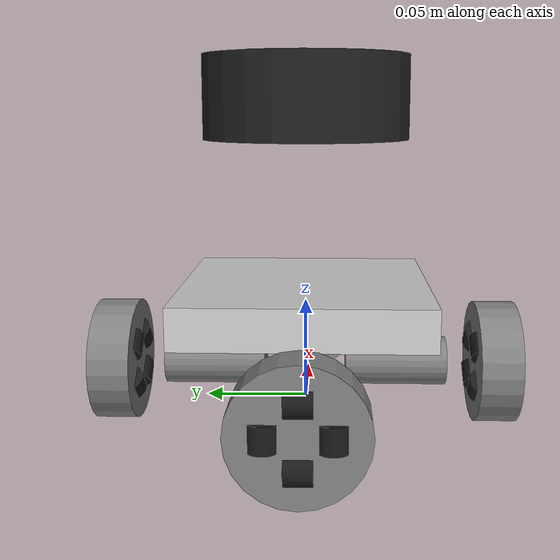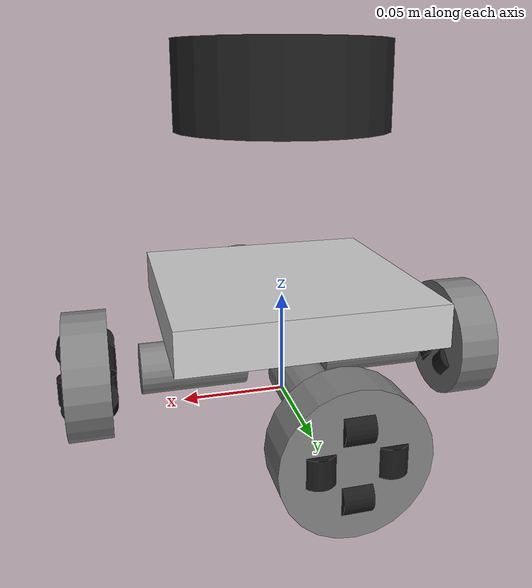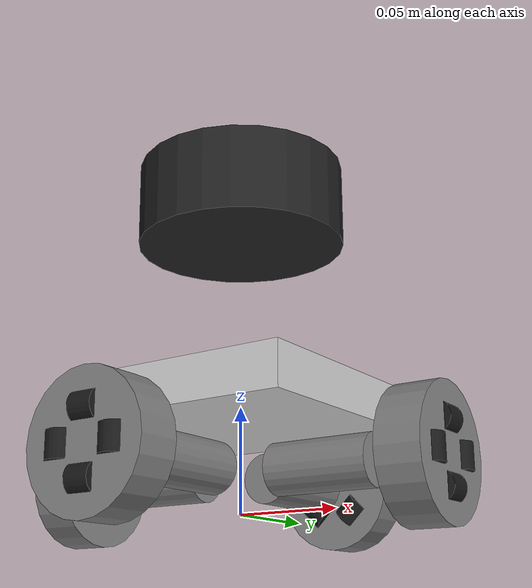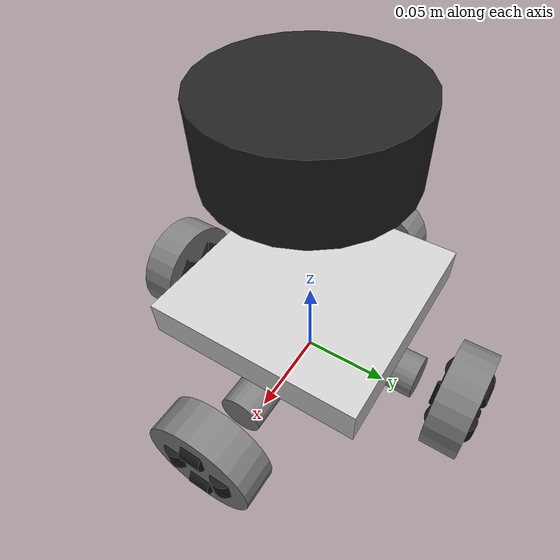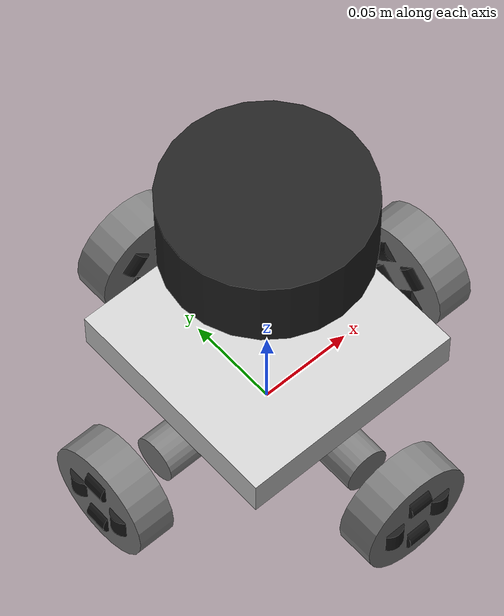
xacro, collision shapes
<?xml version="1.0"?>
<robot xmlns:xacro="http://ros.org/wiki/xacro" name="my_omni_robot">
  <material name="gray">
    <color rgba="0.8 0.8 0.8 1.0"/>
  </material>
  <material name="black">
    <color rgba="0 0 0 1.0"/>
  </material>
  <material name="white">
    <color rgba="1.0 1.0 1.0 1.0"/>
  </material>
  <material name="red">
    <color rgba="1.0 0 0 1.0"/>
  </material>
  <material name="light_red">
    <color rgba="1.0 0.5 0.5 1.0"/>
  </material>
  <material name="yellow">
    <color rgba="0 1.0 1.0 1.0"/>
  </material>

  <xacro:include filename="$(find summer_robot_description)/xacro/omni_wheel.xacro" />

  <link name="base_footprint"/>

  <joint name="footprint_base_joint" type="fixed">
    <parent link="base_footprint"/>
    <child  link="base_link"/>
    <origin xyz="0 0 0" rpy="0 0 0"/>
  </joint>

  <link name="base_link"/>

  <joint name="laser_joint" type="fixed">
    <parent link="base_link"/>
    <child link="laser"/>
    <origin xyz="0.0 0.0 0.15" rpy="0 0 0"/>
  </joint>

  <link name="laser">
    <visual>
      <origin xyz="0 0 0" rpy="0 0 0"/>
      <geometry>
        <cylinder length="0.04" radius="0.05"/>
      </geometry>
      <material name="laser_material">
        <color rgba="0.13 0.13 0.13 1.0"/>
      </material>
    </visual>
    <collision>
      <origin xyz="0 0 0" rpy="0 0 0"/>
      <geometry>
        <cylinder length="0.04" radius="0.05"/>
      </geometry>
    </collision>
    <inertial>
      <origin xyz="0 0 0" rpy="0 0 0"/>
      <mass value="0.1"/>
      <inertia ixx="0.0001" ixy="0" ixz="0" iyy="0.0001" iyz="0" izz="0.0001"/>
    </inertial>
  </link>

 <gazebo reference="laser">
  <visual>
    <material>
      <ambient>0.13 0.13 0.13 1.0</ambient>
      <diffuse>0.13 0.13 0.13 1.0</diffuse>
    </material>
  </visual>

  <sensor name="laser" type="gpu_lidar">
    <pose>0 0 0 0 0 0</pose>
    <always_on>true</always_on>
    <visualize>true</visualize>
    <update_rate>30</update_rate>
    <topic>/scan</topic>

    <lidar>
      <scan>
        <horizontal>
          <samples>720</samples>
          <resolution>1</resolution>
          <min_angle>-3.14159</min_angle>
          <max_angle>3.14159</max_angle>
        </horizontal>
      </scan>
      <range>
        <min>0.05</min>
        <max>10.0</max>
        <resolution>0.01</resolution>
      </range>
      <noise>
        <type>gaussian</type>
        <mean>0.0</mean>
        <stddev>0.01</stddev>
      </noise>
    </lidar>
  </sensor>

  <sensor name="imu_sensor" type="imu">
    <always_on>1</always_on>
    <update_rate>1</update_rate>
    <visualize>true</visualize>
    <topic>imu</topic>
  </sensor>
</gazebo>

  <joint name="body_joint" type="fixed">
    <parent link="base_link"/>
    <child  link="body_link"/>
    <origin xyz="0 0 0.05" rpy="0 0 0"/>
  </joint>

  <link name="body_link">
    <visual>
      <geometry>
        <box size="0.12 0.12 0.02" />
      </geometry>
      <material name="gray"/>
    </visual>
    <collision>
      <geometry>
        <box size="0.12 0.12 0.02" />
      </geometry>
      <surface>
        <contact>
          <collide_bitmask>0x01</collide_bitmask>
        </contact>
      </surface>
    </collision>
    <inertial>
      <mass value="2.0"/>
      <inertia ixx="0.01" ixy="0" ixz="0" iyy="0.01" iyz="0" izz="0.01"/>
    </inertial>
  </link>
  <gazebo reference="body_link">
    <visual>
      <material>
        <ambient>0.8 0.8 0.8 1.0</ambient>
        <diffuse>0.8 0.8 0.8 1.0</diffuse>
      </material>
    </visual>
  </gazebo>

  <joint name="wheel0_attach_joint" type="fixed">
    <parent link="base_link"/>
    <child  link="wheel0_attach_link"/>
    <origin xyz="${0.07*cos(0)} ${0.07*sin(0)} 0.019" rpy="0 0 ${0}"/>
  </joint>
  <link name="wheel0_attach_link" />
  <xacro:omni_wheel_set prefix="wheel0" parent="wheel0_attach_link" />

  <joint name="wheel1_attach_joint" type="fixed">
    <parent link="base_link"/>
    <child  link="wheel1_attach_link"/>
    <origin xyz="${0.07*cos(pi/2)} ${0.07*sin(pi/2)} 0.019" rpy="0 0 ${pi/2}"/>
  </joint>
  <link name="wheel1_attach_link" />
  <xacro:omni_wheel_set prefix="wheel1" parent="wheel1_attach_link" />

  <joint name="wheel2_attach_joint" type="fixed">
    <parent link="base_link"/>
    <child  link="wheel2_attach_link"/>
    <origin xyz="${0.07*cos(pi)} ${0.07*sin(pi)} 0.019" rpy="0 0 ${pi}"/>
  </joint>
  <link name="wheel2_attach_link" />
  <xacro:omni_wheel_set prefix="wheel2" parent="wheel2_attach_link" />

  <joint name="wheel3_attach_joint" type="fixed">
    <parent link="base_link"/>
    <child  link="wheel3_attach_link"/>
    <origin xyz="${0.07*cos(3*pi/2)} ${0.07*sin(3*pi/2)} 0.019" rpy="0 0 ${3*pi/2}"/>
  </joint>
  <link name="wheel3_attach_link" />
  <xacro:omni_wheel_set prefix="wheel3" parent="wheel3_attach_link" />

  <gazebo>
    <plugin filename="gz_ros2_control-system" name="gz_ros2_control::GazeboSimROS2ControlPlugin">
      <robotNamespace>/odm_robot</robotNamespace>
      <parameters>$(find summer_robot_ros2_control)/config/ros2_control.yaml</parameters>
    </plugin>
  </gazebo>
</robot>

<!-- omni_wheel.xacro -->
<robot xmlns:xacro="http://ros.org/wiki/xacro">

  <xacro:macro name="barrel" params="prefix parent dir">
    <joint name="${prefix}_joint" type="continuous">
      <parent link="${parent}"/>
      <child link="${prefix}_link"/>
      <origin rpy="${pi/2} 0 ${dir}" xyz="${0.014*cos(dir)} ${0.014*sin(dir)} 0.006"/>
      <axis xyz="0 0 1"/>
      <dynamics damping="0.001"/>
    </joint>

    <link name="${prefix}_link">
      <visual>
        <geometry>
          <mesh filename="package://summer_robot_description/meshes/omni_barrel.stl" />
        </geometry>
        <material name="black">
          <color rgba="0.1 0.1 0.1 1.0"/>
        </material>
      </visual>
      <collision>
        <origin rpy="0 0 0" xyz="0 0 0"/>
        <geometry>
          <cylinder radius="0.007" length="0.012"/>
        </geometry>
        <surface>
          <contact>
            <collide_bitmask>0x01</collide_bitmask>
          </contact>
        </surface>
      </collision>
      <inertial>
        <mass value="0.002"/>
        <inertia ixx="0.000001" ixy="0" ixz="0" iyy="0.000001" iyz="0" izz="0.000001"/>
      </inertial>
    </link>
    <gazebo reference="${prefix}_link">
      <mu1 value="2.5" />
      <mu2 value="2.5" />
      <kp value="5000" />
      <kd value="10" />
      <visual>
        <material>
          <ambient>0.2 0.2 0.2 1.0</ambient>
          <diffuse>0.2 0.2 0.2 1.0</diffuse>
        </material>
      </visual>
    </gazebo>
  </xacro:macro>

  <xacro:macro name="motor" params="prefix parent">
    <joint name="${prefix}_joint" type="fixed">
      <parent link="${parent}"/>
      <child  link="${prefix}_body_link"/>
      <origin xyz="0 0 0" rpy="0 0 0"/>
    </joint>
    <link name="${prefix}_body_link">
      <visual>
        <geometry>
          <mesh filename="package://summer_robot_description/meshes/ga25_body.stl" />
        </geometry>
        <material name="gray">
          <color rgba="0.5 0.5 0.5 1.0"/>
        </material>
      </visual>
      <collision>
        <origin rpy="0 ${radians(90)} 0" xyz="-0.025 0 0"/>
        <geometry>
          <cylinder radius="0.012" length="0.05" />
        </geometry>
        <surface>
          <contact>
            <collide_bitmask>0x01</collide_bitmask>
          </contact>
        </surface>
      </collision>
      <inertial>
        <mass value="0.150"/>
        <inertia ixx="0.0001" ixy="0" ixz="0" iyy="0.0001" iyz="0" izz="0.0001"/>
      </inertial>
    </link>
    <gazebo reference="${prefix}_body_link">
      <visual>
        <material>
          <ambient>0.5 0.5 0.5 1.0</ambient>
          <diffuse>0.5 0.5 0.5 1.0</diffuse>
        </material>
      </visual>
    </gazebo>

    <joint name="${prefix}_shaft_joint" type="continuous">
      <parent link="${prefix}_body_link"/>
      <child  link="${prefix}_shaft_link"/>
      <origin rpy="0 0 0" xyz="0.012 0 0"/>
      <axis xyz="1 0 0"/>
      <limit velocity="40.0" effort="3.0" />
      <dynamics damping="0.01" friction="0.0"/>
    </joint>
    <ros2_control name="${prefix}_shaft_trans" type="system">
      <hardware>
        <plugin>gz_ros2_control/GazeboSimSystem</plugin>
      </hardware>
      <joint name="${prefix}_shaft_joint">
        <command_interface name="velocity"/>
        <state_interface name="position" />
        <state_interface name="velocity" />
      </joint>
    </ros2_control>
    <link name="${prefix}_shaft_link">
      <visual>
        <geometry>
          <mesh filename="package://summer_robot_description/meshes/ga25_shaft.stl" />
        </geometry>
        <material name="gray">
          <color rgba="0.5 0.5 0.5 1.0"/>
        </material>
      </visual>
      <inertial>
        <mass value="0.010"/>
        <inertia ixx="0.0000005" ixy="0" ixz="0" iyy="0.000001" iyz="0" izz="0.000001"/>
      </inertial>
    </link>
    <gazebo reference="${prefix}_shaft_link">
      <self_collide>false</self_collide>
      <visual>
        <material>
          <ambient>0.5 0.5 0.5 1.0</ambient>
          <diffuse>0.5 0.5 0.5 1.0</diffuse>
        </material>
      </visual>
    </gazebo>
  </xacro:macro>

  <xacro:macro name="omni_wheel_set" params="prefix parent">
    <joint name="${prefix}_base_joint" type="fixed">
      <parent link="${parent}"/>
      <child link="${prefix}_base_link"/>
      <origin rpy="0 0 0" xyz="0 0 0"/>
    </joint>
    <link name="${prefix}_base_link" />

    <xacro:motor prefix="${prefix}_motor" parent="${prefix}_base_link" />

    <joint name="${prefix}_housind_joint" type="fixed">
      <parent link="${prefix}_motor_shaft_link"/>
      <child  link="${prefix}_housing_link"/>
      <origin xyz="0.012 0 0" rpy="0 ${radians(90)} 0"/>
    </joint>
    <link name="${prefix}_housing_link">
      <visual>
        <geometry>
          <mesh filename="package://summer_robot_description/meshes/omni_housing.stl" />
        </geometry>
        <origin xyz="0 0 0" rpy="0 0 0"/>
        <material name="gray">
          <color rgba="0.5 0.5 0.5 1.0"/>
        </material>
      </visual>
      <collision>
        <origin rpy="0 0 0" xyz="0 0 0"/>
        <geometry>
          <cylinder radius="0.03" length="0.02" />
        </geometry>
        <surface>
          <contact>
            <collide_bitmask>0x01</collide_bitmask>
          </contact>
        </surface>
      </collision>
      <inertial>
        <mass value="0.025"/>
        <inertia ixx="0.0001" ixy="0" ixz="0" iyy="0.0001" iyz="0" izz="0.0001"/>
      </inertial>
    </link>
    <gazebo reference="${prefix}_housing_link">
      <visual>
        <material>
          <ambient>0.5 0.5 0.5 1.0</ambient>
          <diffuse>0.5 0.5 0.5 1.0</diffuse>
        </material>
      </visual>
    </gazebo>

    <joint name="${prefix}_housing_s_joint" type="fixed">
      <parent link="${prefix}_housing_link"/>
      <child link="${prefix}_housing_s_link"/>
      <origin rpy="0 ${pi} ${pi/4}" xyz="0 0 0"/>
    </joint>
    <link name="${prefix}_housing_s_link">
      <inertial>
        <mass value="0.025"/>
        <inertia ixx="0.0001" ixy="0" ixz="0" iyy="0.0001" iyz="0" izz="0.0001"/>
      </inertial>
    </link>

    <xacro:barrel prefix="${prefix}_barrel_1" parent="${prefix}_housing_link" dir="0"/>
    <xacro:barrel prefix="${prefix}_barrel_2" parent="${prefix}_housing_link" dir="${pi/2}"/>
    <xacro:barrel prefix="${prefix}_barrel_3" parent="${prefix}_housing_link" dir="${pi}"/>
    <xacro:barrel prefix="${prefix}_barrel_4" parent="${prefix}_housing_link" dir="${-pi/2}"/>
    <xacro:barrel prefix="${prefix}_barrel_5" parent="${prefix}_housing_s_link" dir="0"/>
    <xacro:barrel prefix="${prefix}_barrel_6" parent="${prefix}_housing_s_link" dir="${pi/2}"/>
    <xacro:barrel prefix="${prefix}_barrel_7" parent="${prefix}_housing_s_link" dir="${pi}"/>
    <xacro:barrel prefix="${prefix}_barrel_8" parent="${prefix}_housing_s_link" dir="${-pi/2}"/>
  </xacro:macro>
</robot>
